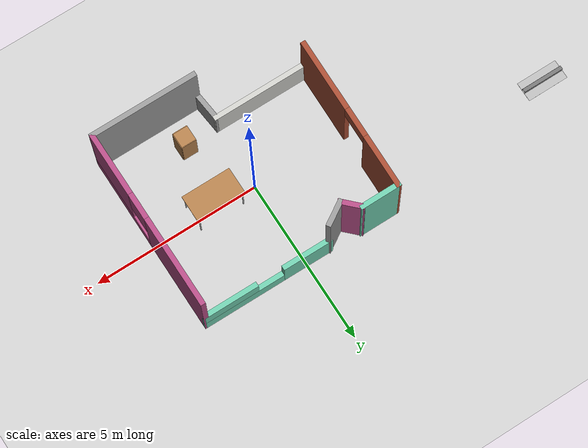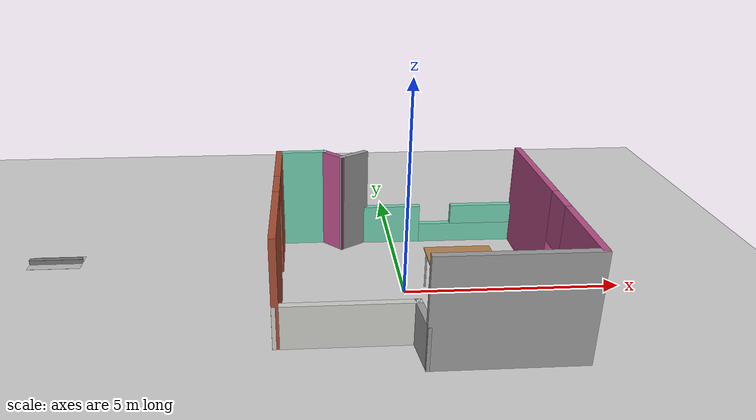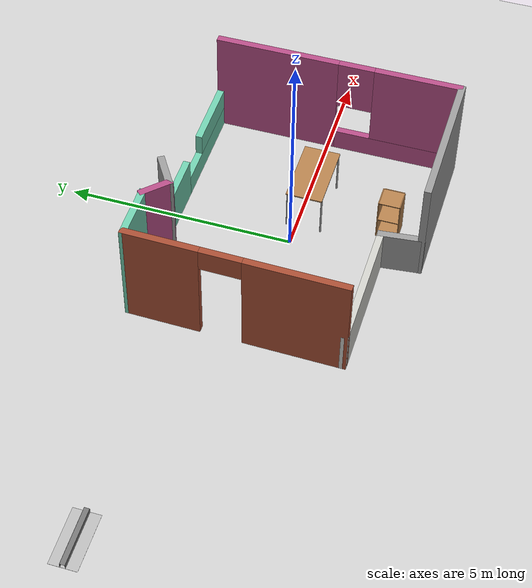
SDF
<sdf version="1.7">
 <world name="__default__">
  <gravity>0 0 -9.8</gravity>
  <magnetic_field>6e-06 2.3e-05 -4.2e-05</magnetic_field>
  <atmosphere type="adiabatic"/>
  <physics type="ode">
   <max_step_size>0.001</max_step_size>
   <real_time_factor>1</real_time_factor>
   <real_time_update_rate>1000</real_time_update_rate>
  </physics>
  <scene><ambient>0.4 0.4 0.4 1</ambient><background>0.7 0.7 0.7 1</background><shadows>1</shadows></scene>
  <spherical_coordinates>
   <surface_model>EARTH_WGS84</surface_model>
   <latitude_deg>0</latitude_deg>
   <longitude_deg>0</longitude_deg>
   <elevation>0</elevation>
   <heading_deg>0</heading_deg>
  </spherical_coordinates>
  <model name="uda_bot_house">
   <pose>0.14052 2.69525 0 0 -0 0</pose>
   <link name="Wall_0">
    <pose>-3.00149 -2.35656 0 0 -0 1.55594</pose>
    <visual name="Wall_0_Visual_0">
     <pose>-1.27771 0 1.25 0 -0 0</pose>
     <geometry><box><size>2.21987 0.15 2.5</size></box></geometry>
     <material>
      <script><uri>file://media/materials/scripts/gazebo.material</uri><name>Gazebo/Bricks</name></script>
      <ambient>0.705882 0.301961 0.521569 1</ambient>
     </material>
     <meta><layer>0</layer></meta>
    </visual>
    <collision name="Wall_0_Collision_0">
     <geometry><box><size>2.21987 0.15 2.5</size></box></geometry>
     <pose>-1.27771 0 1.25 0 -0 0</pose>
    </collision>
    <visual name="Wall_0_Visual_1">
     <pose>1.55994 0 1.25 0 -0 0</pose>
     <geometry><box><size>1.65541 0.15 2.5</size></box></geometry>
     <material>
      <script><uri>file://media/materials/scripts/gazebo.material</uri><name>Gazebo/Bricks</name></script>
      <ambient>0.705882 0.301961 0.521569 1</ambient>
     </material>
     <meta><layer>0</layer></meta>
    </visual>
    <collision name="Wall_0_Collision_1">
     <geometry><box><size>1.65541 0.15 2.5</size></box></geometry>
     <pose>1.55994 0 1.25 0 -0 0</pose>
    </collision>
    <visual name="Wall_0_Visual_2">
     <pose>0.282229 0 2.25 0 -0 0</pose>
     <geometry><box><size>0.9 0.15 0.5</size></box></geometry>
     <material>
      <script><uri>file://media/materials/scripts/gazebo.material</uri><name>Gazebo/Bricks</name></script>
      <ambient>0.705882 0.301961 0.521569 1</ambient>
     </material>
     <meta><layer>0</layer></meta>
    </visual>
    <collision name="Wall_0_Collision_2">
     <geometry><box><size>0.9 0.15 0.5</size></box></geometry>
     <pose>0.282229 0 2.25 0 -0 0</pose>
    </collision>
   </link>
   <link name="Wall_1">
    <collision name="Wall_1_Collision">
     <geometry><box><size>1.25 0.15 2.5</size></box></geometry>
     <pose>0 0 1.25 0 -0 0</pose>
    </collision>
    <visual name="Wall_1_Visual">
     <pose>0 0 1.25 0 -0 0</pose>
     <geometry><box><size>1.25 0.15 2.5</size></box></geometry>
     <material>
      <script><uri>file://media/materials/scripts/gazebo.material</uri><name>Gazebo/Grey</name></script>
      <ambient>0.435294 0.796078 0.67451 1</ambient>
     </material>
     <meta><layer>0</layer></meta>
    </visual>
    <pose>-2.41713 -0.043994 0 0 -0 0</pose>
   </link>
   <link name="Wall_10">
    <collision name="Wall_10_Collision">
     <geometry><box><size>3.27344 0.15 2.5</size></box></geometry>
     <pose>0 0 1.25 0 -0 0</pose>
    </collision>
    <visual name="Wall_10_Visual">
     <pose>0 0 1.25 0 -0 0</pose>
     <geometry><box><size>3.27344 0.15 2.5</size></box></geometry>
     <material>
      <script><uri>file://media/materials/scripts/gazebo.material</uri><name>Gazebo/Grey</name></script>
      <ambient>1 1 1 1</ambient>
     </material>
     <meta><layer>0</layer></meta>
    </visual>
    <pose>1.46887 -5.53613 0 0 -0 -9e-06</pose>
   </link>
   <link name="Wall_2">
    <collision name="Wall_2_Collision">
     <geometry><box><size>0.75 0.15 2.5</size></box></geometry>
     <pose>0 0 1.25 0 -0 0</pose>
    </collision>
    <visual name="Wall_2_Visual">
     <pose>0 0 1.25 0 -0 0</pose>
     <geometry><box><size>0.75 0.15 2.5</size></box></geometry>
     <material>
      <script><uri>file://media/materials/scripts/gazebo.material</uri><name>Gazebo/Grey</name></script>
      <ambient>0.705882 0.301961 0.521569 1</ambient>
     </material>
     <meta><layer>0</layer></meta>
    </visual>
    <pose>-1.655 -0.256126 0 0 -0 -0.785398</pose>
   </link>
   <link name="Wall_3">
    <collision name="Wall_3_Collision">
     <geometry><box><size>0.815976 0.15 2.5</size></box></geometry>
     <pose>0 0 1.25 0 -0 0</pose>
    </collision>
    <visual name="Wall_3_Visual">
     <pose>0 0 1.25 0 -0 0</pose>
     <geometry><box><size>0.815976 0.15 2.5</size></box></geometry>
     <material>
      <script><uri>file://media/materials/scripts/gazebo.material</uri><name>Gazebo/Grey</name></script>
      <ambient>1 1 1 1</ambient>
     </material>
     <meta><layer>0</layer></meta>
    </visual>
    <pose>-1.16086 -0.291188 0 0 -0 0.560676</pose>
   </link>
   <link name="Wall_4">
    <pose>1.06715 -0.125119 0 0 -0 -0.005653</pose>
    <visual name="Wall_4_Visual_0">
     <pose>-1.2551 0 0.5 0 -0 0</pose>
     <geometry><box><size>1.53227 0.15 1</size></box></geometry>
     <material>
      <script><uri>file://media/materials/scripts/gazebo.material</uri><name>Gazebo/Grey</name></script>
      <ambient>0.435294 0.796078 0.67451 1</ambient>
     </material>
     <meta><layer>0</layer></meta>
    </visual>
    <collision name="Wall_4_Collision_0">
     <geometry><box><size>1.53227 0.15 1</size></box></geometry>
     <pose>-1.2551 0 0.5 0 -0 0</pose>
    </collision>
    <visual name="Wall_4_Visual_1">
     <pose>0.766137 0 0.25 0 -0 0</pose>
     <geometry><box><size>2.51019 0.15 0.5</size></box></geometry>
     <material>
      <script><uri>file://media/materials/scripts/gazebo.material</uri><name>Gazebo/Grey</name></script>
      <ambient>0.435294 0.796078 0.67451 1</ambient>
     </material>
     <meta><layer>0</layer></meta>
    </visual>
    <collision name="Wall_4_Collision_1">
     <geometry><box><size>2.51019 0.15 0.5</size></box></geometry>
     <pose>0.766137 0 0.25 0 -0 0</pose>
    </collision>
    <visual name="Wall_4_Visual_2">
     <pose>1.16614 0 0.75 0 -0 0</pose>
     <geometry><box><size>1.71019 0.15 0.5</size></box></geometry>
     <material>
      <script><uri>file://media/materials/scripts/gazebo.material</uri><name>Gazebo/Grey</name></script>
      <ambient>0.435294 0.796078 0.67451 1</ambient>
     </material>
     <meta><layer>0</layer></meta>
    </visual>
    <collision name="Wall_4_Collision_2">
     <geometry><box><size>1.71019 0.15 0.5</size></box></geometry>
     <pose>1.16614 0 0.75 0 -0 0</pose>
    </collision>
   </link>
   <link name="Wall_5">
    <pose>3.02489 -2.81136 0 0 -0 -1.56641</pose>
    <visual name="Wall_5_Visual_0">
     <pose>-1.36724 0 1.25 0 -0 0</pose>
     <geometry><box><size>2.76551 0.15 2.5</size></box></geometry>
     <material>
      <script><uri>file://media/materials/scripts/gazebo.material</uri><name>Gazebo/Grey</name></script>
      <ambient>0.705882 0.301961 0.521569 1</ambient>
     </material>
     <meta><layer>0</layer></meta>
    </visual>
    <collision name="Wall_5_Collision_0">
     <geometry><box><size>2.76551 0.15 2.5</size></box></geometry>
     <pose>-1.36724 0 1.25 0 -0 0</pose>
    </collision>
    <visual name="Wall_5_Visual_1">
     <pose>1.38276 0 0.25 0 -0 0</pose>
     <geometry><box><size>2.73449 0.15 0.5</size></box></geometry>
     <material>
      <script><uri>file://media/materials/scripts/gazebo.material</uri><name>Gazebo/Grey</name></script>
      <ambient>0.705882 0.301961 0.521569 1</ambient>
     </material>
     <meta><layer>0</layer></meta>
    </visual>
    <collision name="Wall_5_Collision_1">
     <geometry><box><size>2.73449 0.15 0.5</size></box></geometry>
     <pose>1.38276 0 0.25 0 -0 0</pose>
    </collision>
    <visual name="Wall_5_Visual_2">
     <pose>1.78276 0 1.5 0 -0 0</pose>
     <geometry><box><size>1.93449 0.15 2</size></box></geometry>
     <material>
      <script><uri>file://media/materials/scripts/gazebo.material</uri><name>Gazebo/Grey</name></script>
      <ambient>0.705882 0.301961 0.521569 1</ambient>
     </material>
     <meta><layer>0</layer></meta>
    </visual>
    <collision name="Wall_5_Collision_2">
     <geometry><box><size>1.93449 0.15 2</size></box></geometry>
     <pose>1.78276 0 1.5 0 -0 0</pose>
    </collision>
    <visual name="Wall_5_Visual_3">
     <pose>0.415512 0 1.9 0 -0 0</pose>
     <geometry><box><size>0.8 0.15 1.2</size></box></geometry>
     <material>
      <script><uri>file://media/materials/scripts/gazebo.material</uri><name>Gazebo/Grey</name></script>
      <ambient>0.705882 0.301961 0.521569 1</ambient>
     </material>
     <meta><layer>0</layer></meta>
    </visual>
    <collision name="Wall_5_Collision_3">
     <geometry><box><size>0.8 0.15 1.2</size></box></geometry>
     <pose>0.415512 0 1.9 0 -0 0</pose>
    </collision>
   </link>
   <link name="Wall_8">
    <collision name="Wall_8_Collision">
     <geometry><box><size>3 0.15 1</size></box></geometry>
     <pose>0 0 0.5 0 -0 0</pose>
    </collision>
    <visual name="Wall_8_Visual">
     <pose>0 0 0.5 0 -0 0</pose>
     <geometry><box><size>3 0.15 1</size></box></geometry>
     <material>
      <script><uri>file://media/materials/scripts/gazebo.material</uri><name>Gazebo/CeilingTiled</name></script>
      <ambient>1 1 1 1</ambient>
     </material>
     <meta><layer>0</layer></meta>
    </visual>
    <pose>-1.61085 -4.66912 0 0 -0 0</pose>
   </link>
   <link name="Wall_9">
    <collision name="Wall_9_Collision">
     <geometry><box><size>1.02236 0.15 1</size></box></geometry>
     <pose>0 0 0.5 0 -0 0</pose>
    </collision>
    <visual name="Wall_9_Visual">
     <pose>0 0 0.5 0 -0 0</pose>
     <geometry><box><size>1.02236 0.15 1</size></box></geometry>
     <material>
      <script><uri>file://media/materials/scripts/gazebo.material</uri><name>Gazebo/Grey</name></script>
      <ambient>1 1 1 1</ambient>
     </material>
     <meta><layer>0</layer></meta>
    </visual>
    <pose>-0.139355 -5.10262 0 0 -0 -1.46394</pose>
   </link>
   <static>1</static>
  </model>
  <model name="table">
   <static>1</static>
   <link name="link">
    <collision name="surface">
     <pose>0 0 1 0 -0 0</pose>
     <geometry><box><size>1.5 0.8 0.03</size></box></geometry>
     <surface><friction><ode><mu>0.6</mu><mu2>0.6</mu2></ode></friction></surface>
    </collision>
    <visual name="visual1">
     <pose>0 0 1 0 -0 0</pose>
     <geometry><box><size>1.5 0.8 0.03</size></box></geometry>
     <material>
      <script><uri>file://media/materials/scripts/gazebo.material</uri><name>Gazebo/Wood</name></script>
     </material>
    </visual>
    <collision name="front_left_leg">
     <pose>0.68 0.38 0.5 0 -0 0</pose>
     <geometry><cylinder><radius>0.02</radius><length>1</length></cylinder></geometry>
    </collision>
    <visual name="front_left_leg">
     <pose>0.68 0.38 0.5 0 -0 0</pose>
     <geometry><cylinder><radius>0.02</radius><length>1</length></cylinder></geometry>
     <material>
      <script><uri>file://media/materials/scripts/gazebo.material</uri><name>Gazebo/Grey</name></script>
     </material>
    </visual>
    <collision name="front_right_leg">
     <pose>0.68 -0.38 0.5 0 -0 0</pose>
     <geometry><cylinder><radius>0.02</radius><length>1</length></cylinder></geometry>
    </collision>
    <visual name="front_right_leg">
     <pose>0.68 -0.38 0.5 0 -0 0</pose>
     <geometry><cylinder><radius>0.02</radius><length>1</length></cylinder></geometry>
     <material>
      <script><uri>file://media/materials/scripts/gazebo.material</uri><name>Gazebo/Grey</name></script>
     </material>
    </visual>
    <collision name="back_right_leg">
     <pose>-0.68 -0.38 0.5 0 -0 0</pose>
     <geometry><cylinder><radius>0.02</radius><length>1</length></cylinder></geometry>
    </collision>
    <visual name="back_right_leg">
     <pose>-0.68 -0.38 0.5 0 -0 0</pose>
     <geometry><cylinder><radius>0.02</radius><length>1</length></cylinder></geometry>
     <material>
      <script><uri>file://media/materials/scripts/gazebo.material</uri><name>Gazebo/Grey</name></script>
     </material>
    </visual>
    <collision name="back_left_leg">
     <pose>-0.68 0.38 0.5 0 -0 0</pose>
     <geometry><cylinder><radius>0.02</radius><length>1</length></cylinder></geometry>
    </collision>
    <visual name="back_left_leg">
     <pose>-0.68 0.38 0.5 0 -0 0</pose>
     <geometry><cylinder><radius>0.02</radius><length>1</length></cylinder></geometry>
     <material>
      <script><uri>file://media/materials/scripts/gazebo.material</uri><name>Gazebo/Grey</name></script>
     </material>
    </visual>
   </link>
   <pose>1.18186 -0.158803 0 0 -0 0</pose>
  </model>
  <model name="cabinet">
   <static>1</static>
   <link name="cabinet_bottom_plate">
    <inertial>
     <pose>0 0 -1 0 -0 0</pose>
     <inertia><ixx>2.05</ixx><ixy>0</ixy><ixz>0</ixz><iyy>2.05</iyy><iyz>0</iyz><izz>2.05</izz></inertia>
     <mass>25</mass>
    </inertial>
    <collision name="cabinet_bottom_plate_geom">
     <pose>0 0 0.01 0 -0 0</pose>
     <geometry><box><size>0.45 0.45 0.02</size></box></geometry>
    </collision>
    <visual name="cabinet_bottom_plate_geom_visual">
     <pose>0 0 0.01 0 -0 0</pose>
     <geometry><box><size>0.45 0.45 0.02</size></box></geometry>
     <material>
      <script><uri>file://media/materials/scripts/gazebo.material</uri><name>Gazebo/Wood</name></script>
     </material>
    </visual>
    <collision name="cabinet_bottom_plate_geom_cabinet_back_plate">
     <pose>0.235 0 0.51 0 -0 0</pose>
     <geometry><box><size>0.02 0.45 1.02</size></box></geometry>
    </collision>
    <visual name="cabinet_bottom_plate_geom_cabinet_back_plate_visual">
     <pose>0.235 0 0.51 0 -0 0</pose>
     <geometry><box><size>0.02 0.45 1.02</size></box></geometry>
     <material>
      <script><uri>file://media/materials/scripts/gazebo.material</uri><name>Gazebo/Wood</name></script>
     </material>
    </visual>
    <collision name="cabinet_bottom_plate_geom_cabinet_left_plate">
     <pose>0 0.235 0.51 0 -0 0</pose>
     <geometry><box><size>0.45 0.02 1.02</size></box></geometry>
    </collision>
    <visual name="cabinet_bottom_plate_geom_cabinet_left_plate_visual">
     <pose>0 0.235 0.51 0 -0 0</pose>
     <geometry><box><size>0.45 0.02 1.02</size></box></geometry>
     <material>
      <script><uri>file://media/materials/scripts/gazebo.material</uri><name>Gazebo/Wood</name></script>
     </material>
    </visual>
    <collision name="cabinet_bottom_plate_geom_cabinet_middle_plate">
     <pose>0 0 0.51 0 -0 0</pose>
     <geometry><box><size>0.45 0.45 0.02</size></box></geometry>
    </collision>
    <visual name="cabinet_bottom_plate_geom_cabinet_middle_plate_visual">
     <pose>0 0 0.51 0 -0 0</pose>
     <geometry><box><size>0.45 0.45 0.02</size></box></geometry>
     <material>
      <script><uri>file://media/materials/scripts/gazebo.material</uri><name>Gazebo/Wood</name></script>
     </material>
    </visual>
    <collision name="cabinet_bottom_plate_geom_cabinet_right_plate">
     <pose>0 -0.235 0.51 0 -0 0</pose>
     <geometry><box><size>0.45 0.02 1.02</size></box></geometry>
    </collision>
    <visual name="cabinet_bottom_plate_geom_cabinet_right_plate_visual">
     <pose>0 -0.235 0.51 0 -0 0</pose>
     <geometry><box><size>0.45 0.02 1.02</size></box></geometry>
     <material>
      <script><uri>file://media/materials/scripts/gazebo.material</uri><name>Gazebo/Wood</name></script>
     </material>
    </visual>
    <collision name="cabinet_bottom_plate_geom_cabinet_top_plate">
     <pose>0 0 1.01 0 -0 0</pose>
     <geometry><box><size>0.45 0.45 0.02</size></box></geometry>
    </collision>
    <visual name="cabinet_bottom_plate_geom_cabinet_top_plate_visual">
     <pose>0 0 1.01 0 -0 0</pose>
     <geometry><box><size>0.45 0.45 0.02</size></box></geometry>
     <material>
      <script><uri>file://media/materials/scripts/gazebo.material</uri><name>Gazebo/Wood</name></script>
     </material>
    </visual>
   </link>
   <pose>0.970183 -1.95837 0 0 -0 0</pose>
  </model>
  <model name="ground_plane">
   <static>1</static>
   <link name="link">
    <collision name="collision">
     <geometry><plane><normal>0 0 1</normal><size>100 100</size></plane></geometry>
     <surface>
      <contact><collide_bitmask>65535</collide_bitmask></contact>
      <friction><ode><mu>100</mu><mu2>50</mu2></ode></friction>
     </surface>
    </collision>
    <visual name="visual">
     <cast_shadows>0</cast_shadows>
     <geometry><plane><normal>0 0 1</normal><size>100 100</size></plane></geometry>
     <material>
      <script><uri>file://media/materials/scripts/gazebo.material</uri><name>Gazebo/Grey</name></script>
     </material>
    </visual>
   </link>
   <pose>1.64543 -0.514498 0 0 -0 0</pose>
  </model>
  <light name="sun" type="directional">
   <pose>4.88772 -13.4402 10 0 -0 0</pose>
   <diffuse>0.8 0.8 0.8 1</diffuse>
   <specular>0.2 0.2 0.2 1</specular>
   <attenuation>
    <range>1000</range>
    <constant>0.9</constant>
    <linear>0.01</linear>
    <quadratic>0.001</quadratic>
   </attenuation>
   <direction>-0.5 0.1 -0.9</direction>
   <spot><inner_angle>0</inner_angle><outer_angle>0</outer_angle><falloff>0</falloff></spot>
  </light>
  <model name="frc2016_rockwall">
   <static>1</static>
   <link name="link">
    <inertial>
     <mass>10</mass>
     <pose>0 0 0.08974 0 -0 0</pose>
     <inertia><ixx>0.327091</ixx><ixy>0</ixy><ixz>0</ixz><iyy>1.37417</iyy><iyz>0</iyz><izz>1.64109</izz></inertia>
    </inertial>
    <visual name="platform">
     <pose>0 0 0.06432 0 -0 0</pose>
     <geometry><box><size>1.27 0.5969 0.003175</size></box></geometry>
    </visual>
    <collision name="platform">
     <pose>0 0 0.06432 0 -0 0</pose>
     <geometry><box><size>1.27 0.5969 0.003175</size></box></geometry>
    </collision>
    <visual name="up1">
     <pose>0 0.05166 0.12537 0 -0 0</pose>
     <geometry><box><size>1.27 0.00462 0.11892</size></box></geometry>
     <material><ambient>0.46 0.46 0.46 1</ambient><diffuse>0.46 0.46 0.46 1</diffuse></material>
    </visual>
    <collision name="up1">
     <pose>0 0.05166 0.12537 0 -0 0</pose>
     <geometry><box><size>1.27 0.00462 0.11892</size></box></geometry>
    </collision>
    <visual name="up2">
     <pose>0 -0.05801 0.12537 0 -0 0</pose>
     <geometry><box><size>1.27 0.00462 0.11892</size></box></geometry>
     <material><ambient>0.46 0.46 0.46 1</ambient><diffuse>0.46 0.46 0.46 1</diffuse></material>
    </visual>
    <collision name="up2">
     <pose>0 -0.05801 0.12537 0 -0 0</pose>
     <geometry><box><size>1.27 0.00462 0.11892</size></box></geometry>
    </collision>
    <visual name="top">
     <pose>0 -0.00249 0.18252 0 -0 0</pose>
     <geometry><box><size>1.27 0.1143 0.00462</size></box></geometry>
     <material><ambient>0.46 0.46 0.46 1</ambient><diffuse>0.46 0.46 0.46 1</diffuse></material>
    </visual>
    <collision name="top">
     <pose>0 -0.00249 0.18252 0 -0 0</pose>
     <geometry><box><size>1.27 0.1143 0.00462</size></box></geometry>
    </collision>
   </link>
   <pose>-8.3283 1.71983 0 0 -0 0</pose>
  </model>
 </world>
</sdf>
